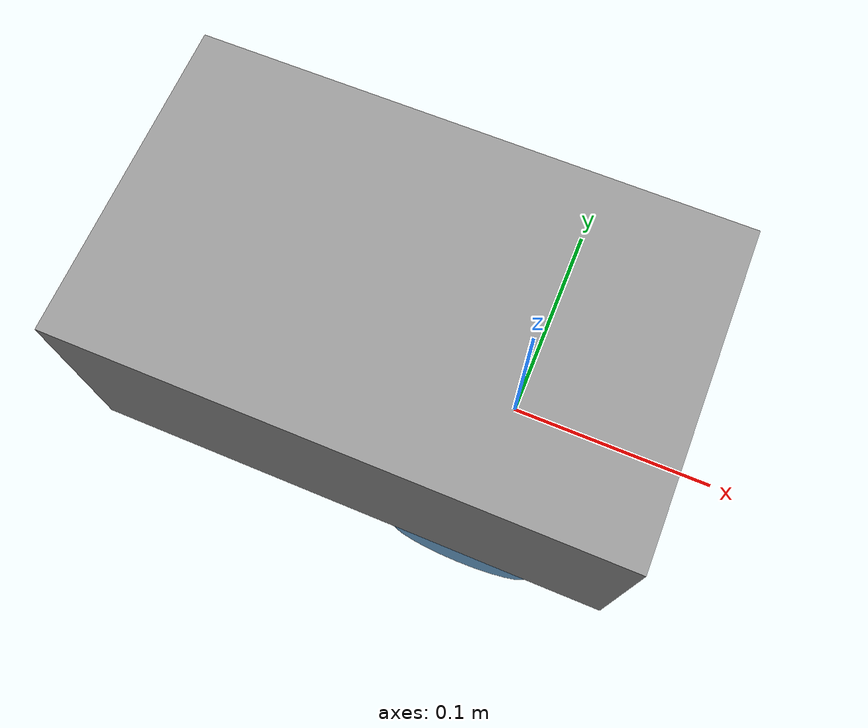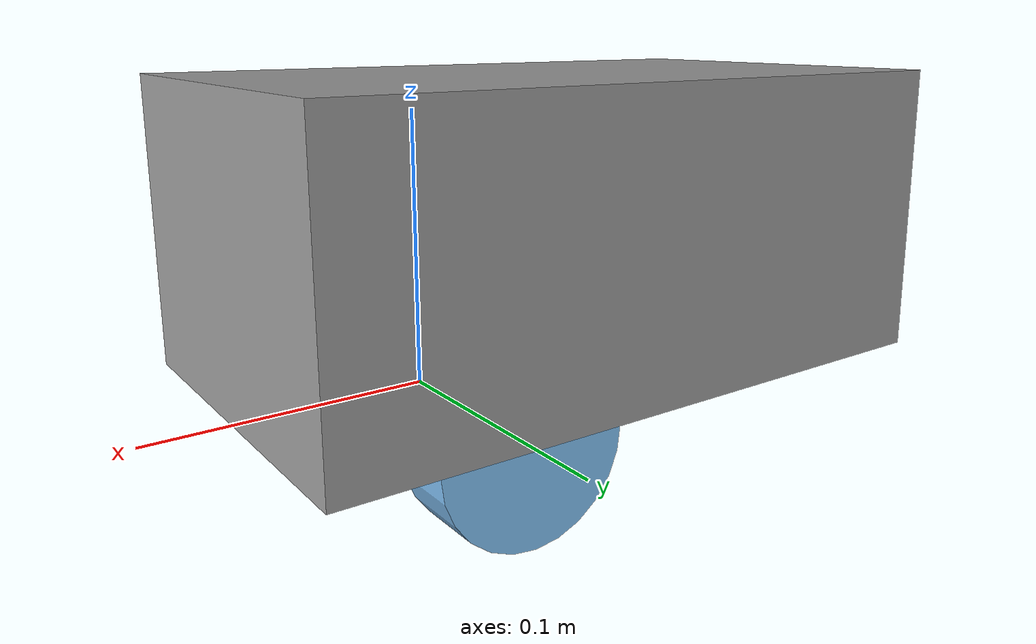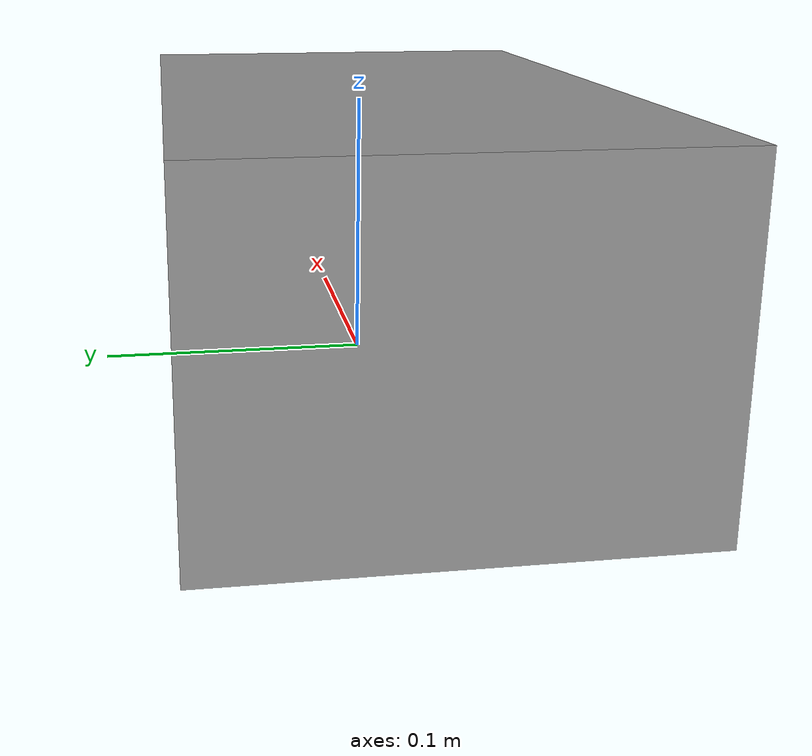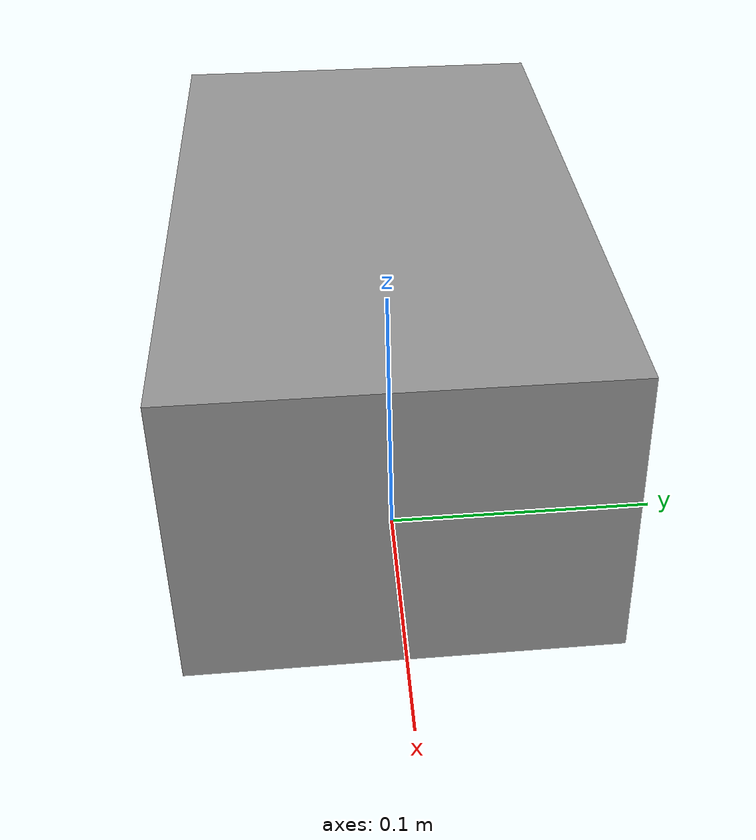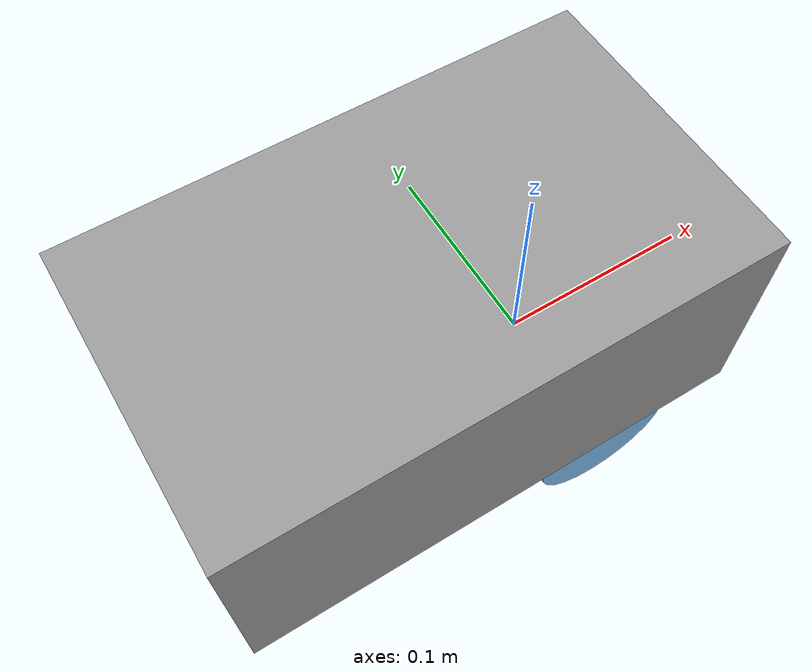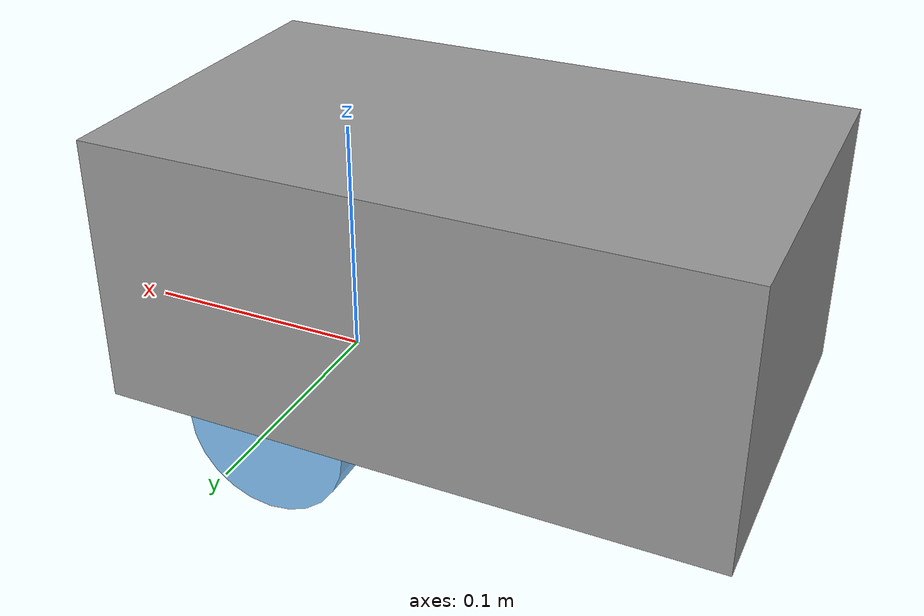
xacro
<?xml version="1.0" ?>

<robot xmlns:xacro="http://www.ros.org/wiki/xacro">
    <link name="base_link"></link>

    <!-- SLAM specific -->

    <joint name="base_footprint_joint" type="fixed">
        <parent link="base_link" />
        <child link="base_footprint" />
        <origin xyz="0.0 0.0 0.0" rpy="0.0 0.0 0.0" />
    </joint>

    <link name="base_footprint"></link>

    <!-- SLAM specific END -->

    <joint name="chassis_joint" type="fixed">
        <parent link="base_link" />
        <child link="chassis" />
        <origin xyz="-0.0565 0.0 0.0555" />
    </joint>

    <link name="chassis">
        <visual>
            <origin xyz="0.0 0.0 0.0" />
            <geometry>
                <box size="0.253 0.15 0.111" />
            </geometry>
            <material name="giga_grey" />
        </visual>
        <collision>
            <origin xyz="0.0 0.0 0.0" />
            <geometry>
                <box size="0.253 0.15 0.111" />
            </geometry>
        </collision>
        <xacro:inertial_box mass="0.5" x="0.253" y="0.15" z="0.111">
            <origin xyz="0.0 0 0.0" rpy="0.0 0.0 0.0"/>
        </xacro:inertial_box>
    </link>

    <joint name="right_wheel_joint" type="continuous">
        <parent link="base_link" />
        <child link="right_wheel" />
        <origin xyz="0.0 -0.0615 0.0" rpy="1.5707963267948966 0.0 0.0" />
        <axis xyz="0.0 0.0 -1.0" />
    </joint>

    <link name="right_wheel">
        <visual>
            <geometry>
                <cylinder radius="0.034" length="0.025"/>
            </geometry>
            <material name="sky_blue" />
        </visual>
        <collision>
            <geometry>
                <cylinder radius="0.034" length="0.025"/>
            </geometry>
        </collision>
        <xacro:inertial_cylinder mass="0.1" radius="0.034" length="0.025">
            <origin xyz="0.0 0.0 0.0" rpy="0.0 0.0 0.0"/>
        </xacro:inertial_cylinder>
    </link>

    <joint name="left_wheel_joint" type="continuous">
        <parent link="base_link" />
        <child link="left_wheel" />
        <origin xyz="0.0 0.0615 0.0" rpy="4.7123889803846899 0.0 0.0" />
        <axis xyz="0.0 0.0 1.0" />
    </joint>

    <link name="left_wheel">
        <visual>
            <geometry>
                <cylinder radius="0.034" length="0.025"/>
            </geometry>
            <material name="sky_blue" />
        </visual>
        <collision>
            <geometry>
                <cylinder radius="0.034" length="0.025"/>
            </geometry>
        </collision>
        <xacro:inertial_cylinder mass="0.1" radius="0.034" length="0.025">
            <origin xyz="0.0 0.0 0.0" rpy="0.0 0.0 0.0"/>
        </xacro:inertial_cylinder>
    </link>

    <joint name="caster_wheel_joint" type="fixed">
        <parent link="base_link" />
        <child link="caster_wheel" />
        <origin xyz="-0.114 0.0 0.0" />
    </joint>

    <link name="caster_wheel">
        <visual>
            <geometry>
                <sphere radius="0.034" />
            </geometry>
            <material name="sky_blue" />
        </visual>
        <collision>
            <geometry>
                <sphere radius="0.034" />
            </geometry>
        </collision>
        <xacro:inertial_sphere mass="0.1" radius="0.034">
            <origin xyz="0.0 0.0 0.0" rpy="0.0 0.0 0.0"/>
        </xacro:inertial_sphere>
    </link>

</robot>
